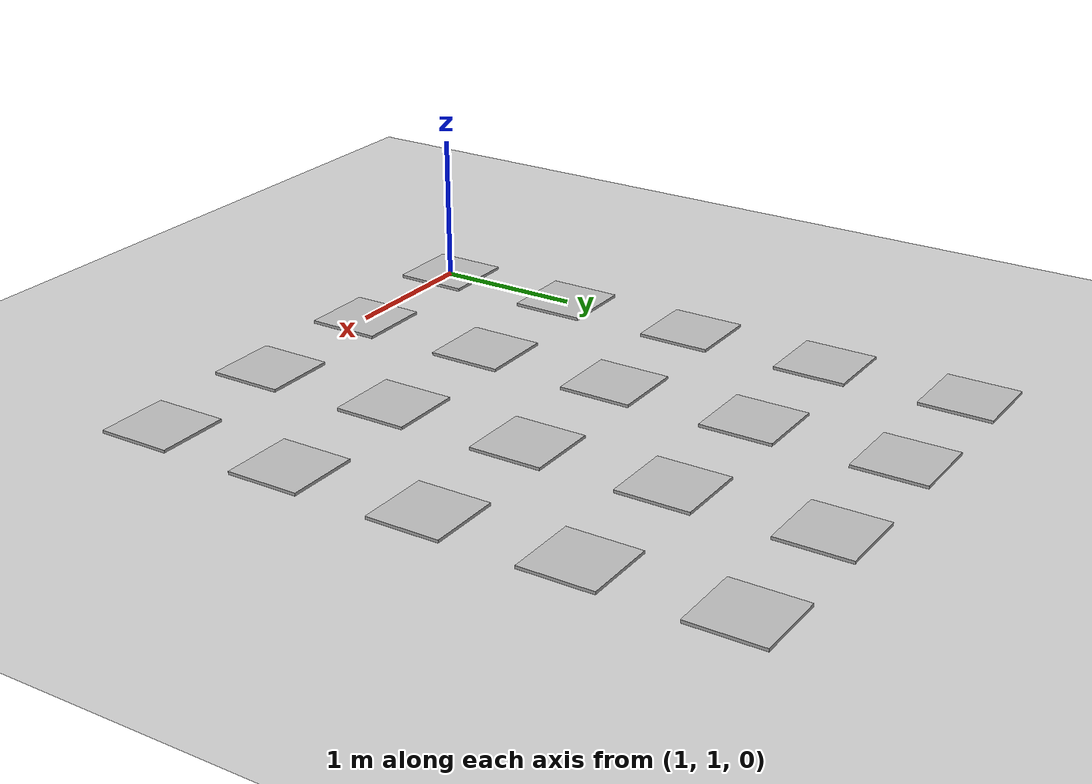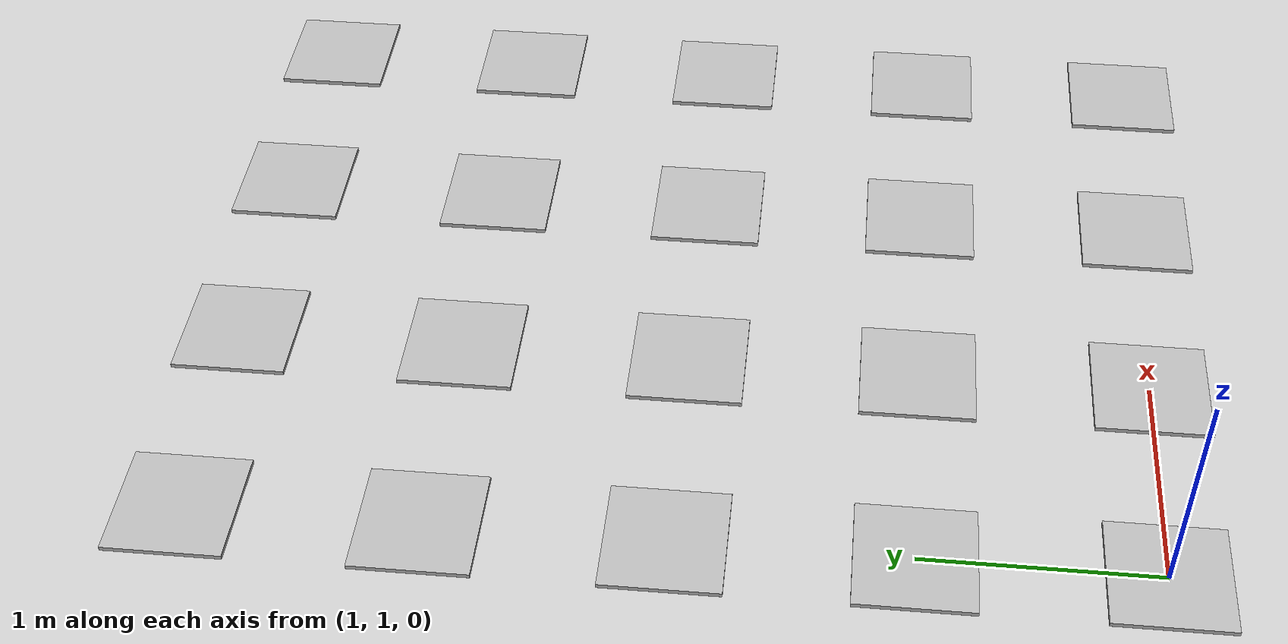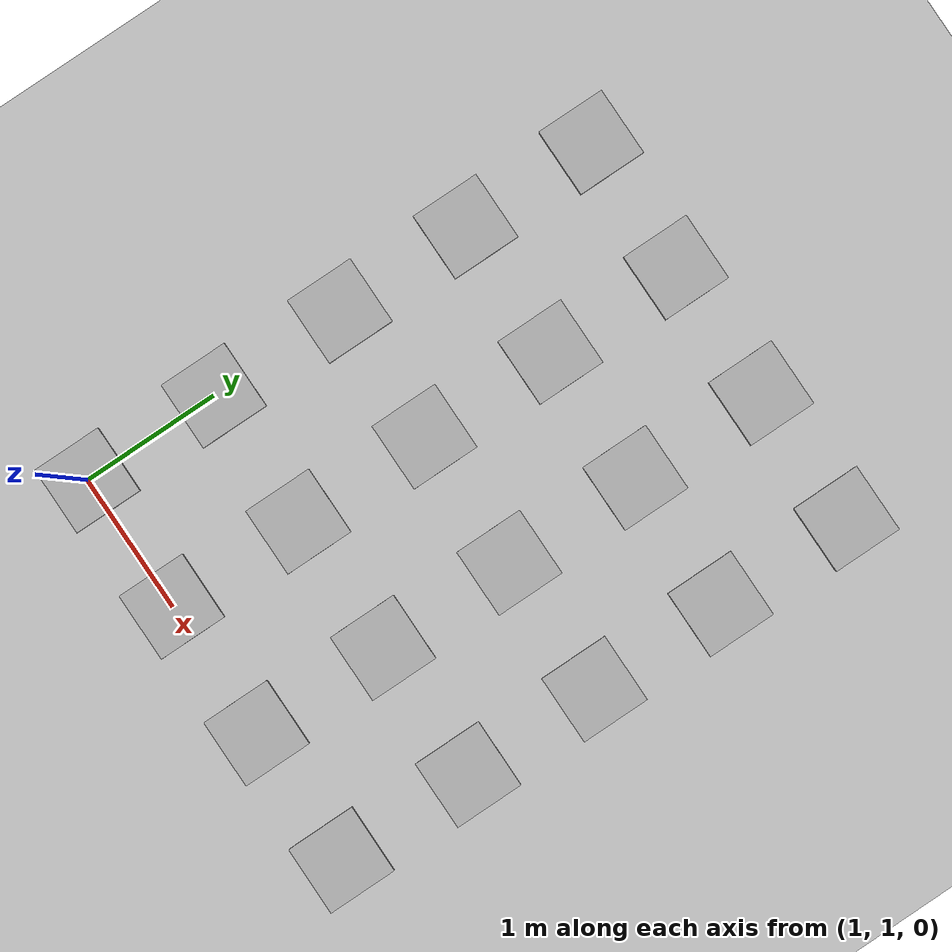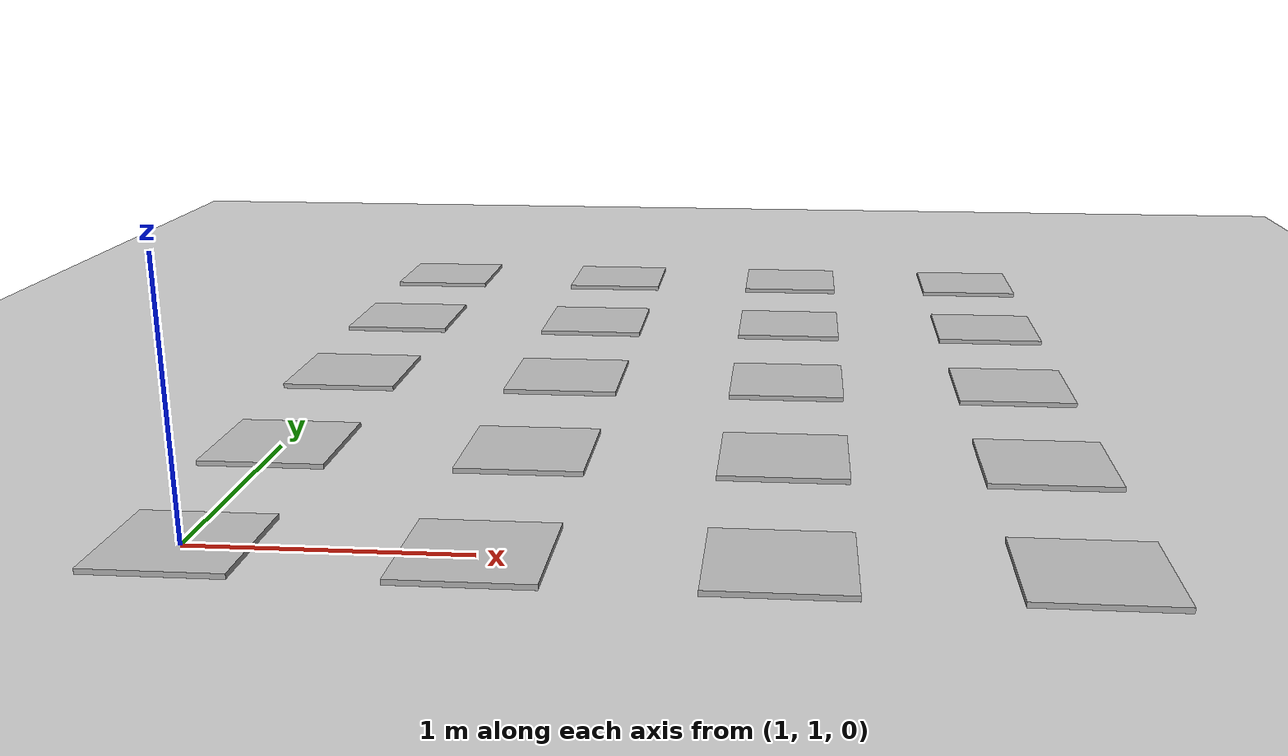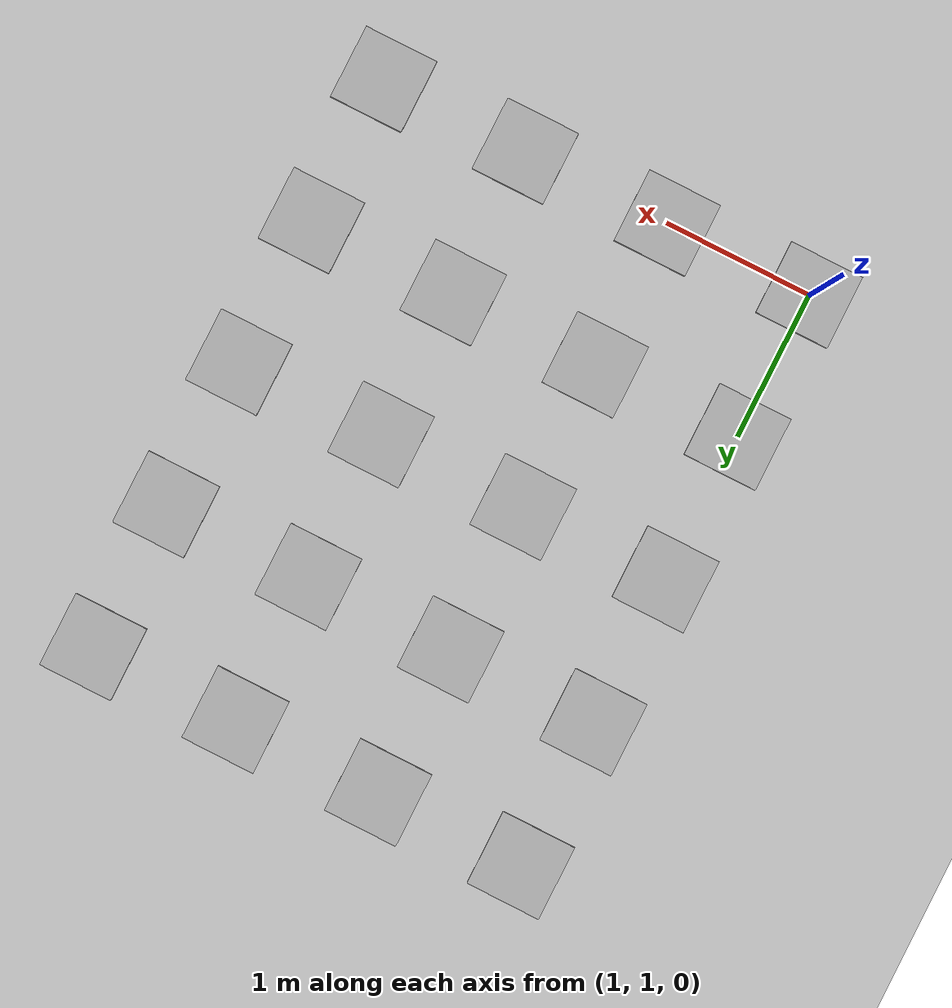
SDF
<?xml version="1.0" ?>
<sdf version="1.5">
  <world name="default">
   <light type="directional" name="sun">
      <cast_shadows>false</cast_shadows>
      <pose>0 0 100 0 0 0</pose>
      <diffuse>0.8 0.8 0.8 1</diffuse>
      <specular>0.9 0.9 0.9 1</specular>
      <attenuation>
        <range>1000</range>
        <constant>0.9</constant>
        <linear>0.01</linear>
        <quadratic>0.001</quadratic>
      </attenuation>
      <direction>0.2 0.2 -0.9</direction>
    </light>

    <!-- A ground plane -->
    <include>
      <uri>model://ground_plane</uri>
    </include>

    <!-- 初始视角 -->
    <gui fullscreen='0'>
      <camera name='user_camera'>
        <pose>10.0 -11 22.0 0 1.0 1.55</pose>
        <view_controller>orbit</view_controller>
      </camera>
    </gui>

    <!-- 地面 -->
    <physics type='ode'>
      <gravity>0 0 -9.8066</gravity>
      <ode>
        <solver>
          <type>quick</type>
          <iters>150</iters>
          <sor>1.3</sor>
          <use_dynamic_moi_rescaling>0</use_dynamic_moi_rescaling>
        </solver>
        <constraints>
          <cfm>0.00001</cfm>
          <erp>0.2</erp>
          <contact_max_correcting_vel>1000</contact_max_correcting_vel>
          <contact_surface_layer>0.01</contact_surface_layer>
        </constraints>
      </ode>
      <max_step_size>0.004</max_step_size>
      <real_time_factor>1000.0</real_time_factor>
      <real_time_update_rate>250</real_time_update_rate>
      <magnetic_field>6.0e-6 2.3e-5 -4.2e-5</magnetic_field>
    </physics>

    <!-- 搜索目标：1-20 6X6_250 aruco -->
    <!-- 对应的dictionary_type为10 -->
    <model name='aruco'>
      <static>true</static>
      <link name="aruco_1">
        <pose frame=''> 1.0 1.0 0.01 0.0 0.0 0.0</pose>
        <visual name="visual">
            <cast_shadows>false</cast_shadows>
            <geometry>
              <box>
                <size>0.5 0.5 0.02</size>
              </box>
            </geometry>
            <material>
              <script>
                <uri>model://texture_aruco/texture.material</uri>
                <name>aruco_1</name>
              </script>
            </material>
        </visual>
      </link>
      <link name="aruco_2">
        <pose frame=''> 1.0 2.0 0.01 0.0 0.0 0.0</pose>
        <visual name="visual">
            <cast_shadows>false</cast_shadows>
            <geometry>
              <box>
                <size>0.5 0.5 0.02</size>
              </box>
            </geometry>
            <material>
              <script>
                <uri>model://texture_aruco/texture.material</uri>
                <name>aruco_2</name>
              </script>
            </material>
        </visual>
      </link>
      <link name="aruco_3">
        <pose frame=''> 1.0 3.0 0.01 0.0 0.0 0.0</pose>
        <visual name="visual">
            <cast_shadows>false</cast_shadows>
            <geometry>
              <box>
                <size>0.5 0.5 0.02</size>
              </box>
            </geometry>
            <material>
              <script>
                <uri>model://texture_aruco/texture.material</uri>
                <name>aruco_3</name>
              </script>
            </material>
        </visual>
      </link>
      <link name="aruco_4">
        <pose frame=''> 1.0 4.0 0.01 0.0 0.0 0.0</pose>
        <visual name="visual">
            <cast_shadows>false</cast_shadows>
            <geometry>
              <box>
                <size>0.5 0.5 0.02</size>
              </box>
            </geometry>
            <material>
              <script>
                <uri>model://texture_aruco/texture.material</uri>
                <name>aruco_4</name>
              </script>
            </material>
        </visual>
      </link>
      <link name="aruco_5">
        <pose frame=''> 1.0 5.0 0.01 0.0 0.0 0.0</pose>
        <visual name="visual">
            <cast_shadows>false</cast_shadows>
            <geometry>
              <box>
                <size>0.5 0.5 0.02</size>
              </box>
            </geometry>
            <material>
              <script>
                <uri>model://texture_aruco/texture.material</uri>
                <name>aruco_5</name>
              </script>
            </material>
        </visual>
      </link>
      <link name="aruco_6">
        <pose frame=''> 2.0 1.0 0.01 0.0 0.0 0.0</pose>
        <visual name="visual">
            <cast_shadows>false</cast_shadows>
            <geometry>
              <box>
                <size>0.5 0.5 0.02</size>
              </box>
            </geometry>
            <material>
              <script>
                <uri>model://texture_aruco/texture.material</uri>
                <name>aruco_6</name>
              </script>
            </material>
        </visual>
      </link>
      <link name="aruco_7">
        <pose frame=''> 2.0 2.0 0.01 0.0 0.0 0.0</pose>
        <visual name="visual">
            <cast_shadows>false</cast_shadows>
            <geometry>
              <box>
                <size>0.5 0.5 0.02</size>
              </box>
            </geometry>
            <material>
              <script>
                <uri>model://texture_aruco/texture.material</uri>
                <name>aruco_7</name>
              </script>
            </material>
        </visual>
      </link>
      <link name="aruco_8">
        <pose frame=''> 2.0 3.0 0.01 0.0 0.0 0.0</pose>
        <visual name="visual">
            <cast_shadows>false</cast_shadows>
            <geometry>
              <box>
                <size>0.5 0.5 0.02</size>
              </box>
            </geometry>
            <material>
              <script>
                <uri>model://texture_aruco/texture.material</uri>
                <name>aruco_8</name>
              </script>
            </material>
        </visual>
      </link>
      <link name="aruco_9">
        <pose frame=''> 2.0 4.0 0.01 0.0 0.0 0.0</pose>
        <visual name="visual">
            <cast_shadows>false</cast_shadows>
            <geometry>
              <box>
                <size>0.5 0.5 0.02</size>
              </box>
            </geometry>
            <material>
              <script>
                <uri>model://texture_aruco/texture.material</uri>
                <name>aruco_9</name>
              </script>
            </material>
        </visual>
      </link>
      <link name="aruco_10">
        <pose frame=''> 2.0 5.0 0.01 0.0 0.0 0.0</pose>
        <visual name="visual">
            <cast_shadows>false</cast_shadows>
            <geometry>
              <box>
                <size>0.5 0.5 0.02</size>
              </box>
            </geometry>
            <material>
              <script>
                <uri>model://texture_aruco/texture.material</uri>
                <name>aruco_9</name>
              </script>
            </material>
        </visual>
      </link>
      <link name="aruco_11">
        <pose frame=''> 3.0 1.0 0.01 0.0 0.0 0.0</pose>
        <visual name="visual">
            <cast_shadows>false</cast_shadows>
            <geometry>
              <box>
                <size>0.5 0.5 0.02</size>
              </box>
            </geometry>
            <material>
              <script>
                <uri>model://texture_aruco/texture.material</uri>
                <name>aruco_11</name>
              </script>
            </material>
        </visual>
      </link>
      <link name="aruco_12">
        <pose frame=''> 3.0 2.0 0.01 0.0 0.0 0.0</pose>
        <visual name="visual">
            <cast_shadows>false</cast_shadows>
            <geometry>
              <box>
                <size>0.5 0.5 0.02</size>
              </box>
            </geometry>
            <material>
              <script>
                <uri>model://texture_aruco/texture.material</uri>
                <name>aruco_12</name>
              </script>
            </material>
        </visual>
      </link>
      <link name="aruco_13">
        <pose frame=''> 3.0 3.0 0.01 0.0 0.0 0.0</pose>
        <visual name="visual">
            <cast_shadows>false</cast_shadows>
            <geometry>
              <box>
                <size>0.5 0.5 0.02</size>
              </box>
            </geometry>
            <material>
              <script>
                <uri>model://texture_aruco/texture.material</uri>
                <name>aruco_13</name>
              </script>
            </material>
        </visual>
      </link>
      <link name="aruco_14">
        <pose frame=''> 3.0 4.0 0.01 0.0 0.0 0.0</pose>
        <visual name="visual">
            <cast_shadows>false</cast_shadows>
            <geometry>
              <box>
                <size>0.5 0.5 0.02</size>
              </box>
            </geometry>
            <material>
              <script>
                <uri>model://texture_aruco/texture.material</uri>
                <name>aruco_14</name>
              </script>
            </material>
        </visual>
      </link>
      <link name="aruco_15">
        <pose frame=''> 3.0 5.0 0.01 0.0 0.0 0.0</pose>
        <visual name="visual">
            <cast_shadows>false</cast_shadows>
            <geometry>
              <box>
                <size>0.5 0.5 0.02</size>
              </box>
            </geometry>
            <material>
              <script>
                <uri>model://texture_aruco/texture.material</uri>
                <name>aruco_15</name>
              </script>
            </material>
        </visual>
      </link>
      <link name="aruco_16">
        <pose frame=''> 4.0 1.0 0.01 0.0 0.0 0.0</pose>
        <visual name="visual">
            <cast_shadows>false</cast_shadows>
            <geometry>
              <box>
                <size>0.5 0.5 0.02</size>
              </box>
            </geometry>
            <material>
              <script>
                <uri>model://texture_aruco/texture.material</uri>
                <name>aruco_16</name>
              </script>
            </material>
        </visual>
      </link>
      <link name="aruco_17">
        <pose frame=''> 4.0 2.0 0.01 0.0 0.0 0.0</pose>
        <visual name="visual">
            <cast_shadows>false</cast_shadows>
            <geometry>
              <box>
                <size>0.5 0.5 0.02</size>
              </box>
            </geometry>
            <material>
              <script>
                <uri>model://texture_aruco/texture.material</uri>
                <name>aruco_17</name>
              </script>
            </material>
        </visual>
      </link>
      <link name="aruco_18">
        <pose frame=''> 4.0 3.0 0.01 0.0 0.0 0.0</pose>
        <visual name="visual">
            <cast_shadows>false</cast_shadows>
            <geometry>
              <box>
                <size>0.5 0.5 0.02</size>
              </box>
            </geometry>
            <material>
              <script>
                <uri>model://texture_aruco/texture.material</uri>
                <name>aruco_18</name>
              </script>
            </material>
        </visual>
      </link>
      <link name="aruco_19">
        <pose frame=''> 4.0 4.0 0.01 0.0 0.0 0.0</pose>
        <visual name="visual">
            <cast_shadows>false</cast_shadows>
            <geometry>
              <box>
                <size>0.5 0.5 0.02</size>
              </box>
            </geometry>
            <material>
              <script>
                <uri>model://texture_aruco/texture.material</uri>
                <name>aruco_19</name>
              </script>
            </material>
        </visual>
      </link>
      <link name="aruco_20">
        <pose frame=''> 4.0 5.0 0.01 0.0 0.0 0.0</pose>
        <visual name="visual">
            <cast_shadows>false</cast_shadows>
            <geometry>
              <box>
                <size>0.5 0.5 0.02</size>
              </box>
            </geometry>
            <material>
              <script>
                <uri>model://texture_aruco/texture.material</uri>
                <name>aruco_20</name>
              </script>
            </material>
        </visual>
      </link>

    </model>

  </world>
</sdf>
